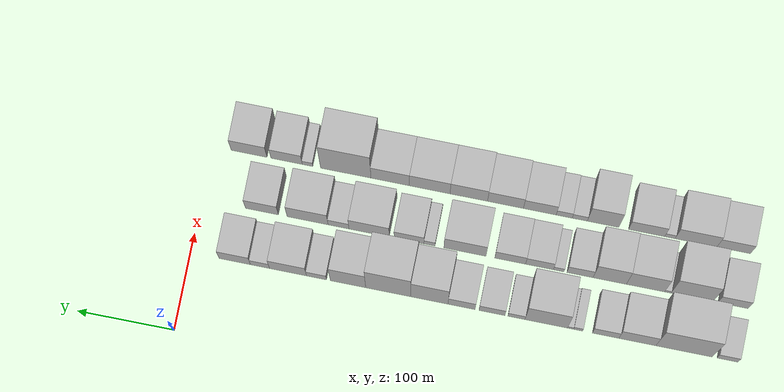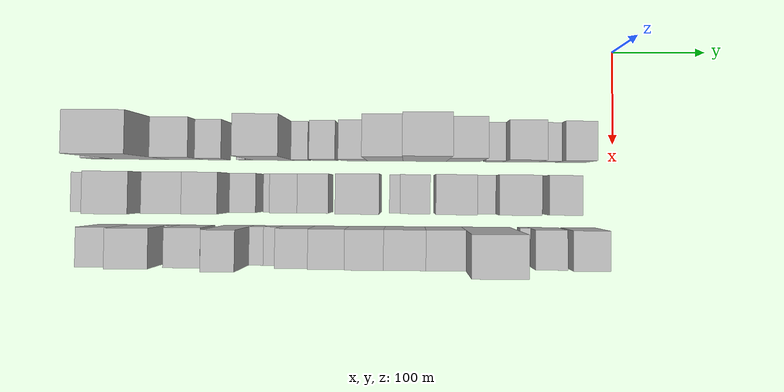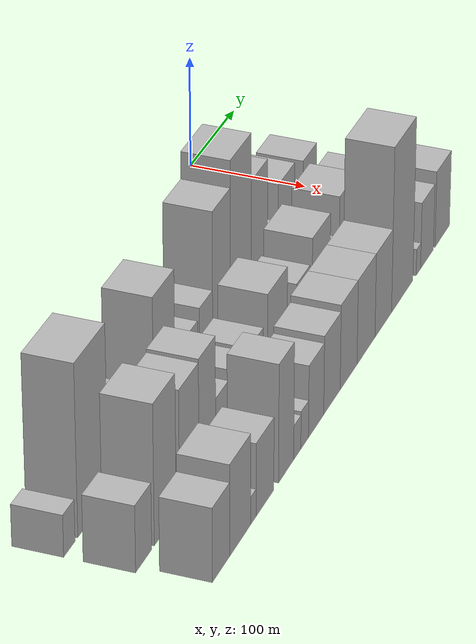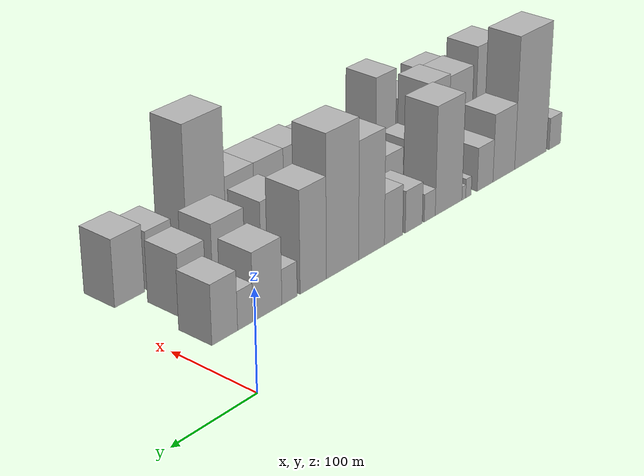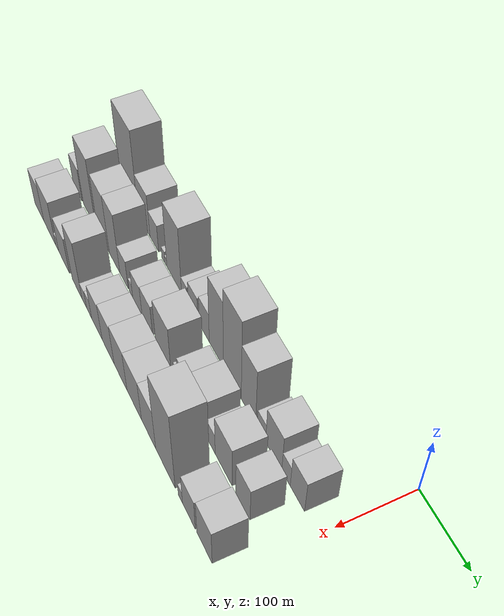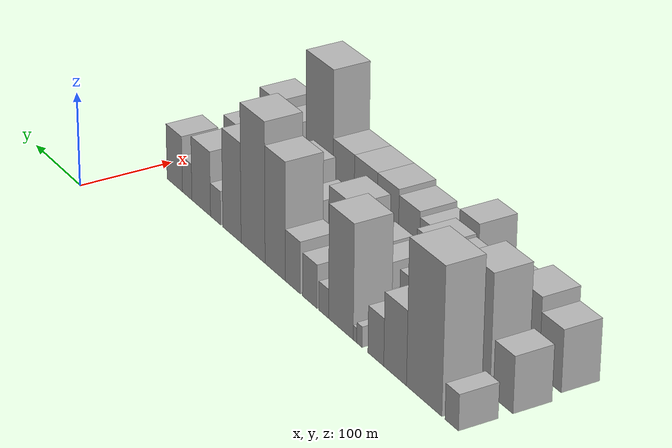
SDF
<sdf version="1.6">
 <world name="default">
  <model name="building_1">
   <static>1</static>
   <pose>100.0000 -549.3351 0 0.000000 0.000000 0.000000</pose>
   <link name="link">
    <pose>0 0 18.00 0 0 0</pose>
    <collision name="collision"><geometry><box><size>40.0000 21.3298 36.0000</size></box></geometry></collision>
    <visual name="visual">
     <cast_shadows>0</cast_shadows>
     <geometry><box><size>40.0000 21.3298 36.0000</size></box></geometry>
     <material>
      <script>
       <uri>model://HANNAS_wall/materials/scripts</uri>
       <uri>model://HANNAS_wall/materials/textures</uri>
       <name>vrc/HANNAS_wall</name>
      </script>
     </material>
    </visual>
   </link>
  </model>
  <model name="building_2">
   <static>1</static>
   <pose>100.0000 -504.9209 0 0.000000 0.000000 0.000000</pose>
   <link name="link">
    <pose>0 0 73.50 0 0 0</pose>
    <collision name="collision"><geometry><box><size>40.0000 57.4987 147.0000</size></box></geometry></collision>
    <visual name="visual">
     <cast_shadows>0</cast_shadows>
     <geometry><box><size>40.0000 57.4987 147.0000</size></box></geometry>
     <material>
      <script>
       <uri>model://HANNAS_wall/materials/scripts</uri>
       <uri>model://HANNAS_wall/materials/textures</uri>
       <name>vrc/HANNAS_wall</name>
      </script>
     </material>
    </visual>
   </link>
  </model>
  <model name="building_3">
   <static>1</static>
   <pose>100.0000 -457.2303 0 0.000000 0.000000 0.000000</pose>
   <link name="link">
    <pose>0 0 37.50 0 0 0</pose>
    <collision name="collision"><geometry><box><size>40.0000 37.8825 75.0000</size></box></geometry></collision>
    <visual name="visual">
     <cast_shadows>0</cast_shadows>
     <geometry><box><size>40.0000 37.8825 75.0000</size></box></geometry>
     <material>
      <script>
       <uri>model://HANNAS_wall/materials/scripts</uri>
       <uri>model://HANNAS_wall/materials/textures</uri>
       <name>vrc/HANNAS_wall</name>
      </script>
     </material>
    </visual>
   </link>
  </model>
  <model name="building_4">
   <static>1</static>
   <pose>100.0000 -424.8399 0 0.000000 0.000000 0.000000</pose>
   <link name="link">
    <pose>0 0 24.00 0 0 0</pose>
    <collision name="collision"><geometry><box><size>40.0000 26.8981 48.0000</size></box></geometry></collision>
    <visual name="visual">
     <cast_shadows>0</cast_shadows>
     <geometry><box><size>40.0000 26.8981 48.0000</size></box></geometry>
     <material>
      <script>
       <uri>model://HANNAS_wall/materials/scripts</uri>
       <uri>model://HANNAS_wall/materials/textures</uri>
       <name>vrc/HANNAS_wall</name>
      </script>
     </material>
    </visual>
   </link>
  </model>
  <model name="building_5">
   <static>1</static>
   <pose>100.0000 -396.7720 0 0.000000 0.000000 0.000000</pose>
   <link name="link">
    <pose>0 0 10.50 0 0 0</pose>
    <collision name="collision"><geometry><box><size>40.0000 9.2377 21.0000</size></box></geometry></collision>
    <visual name="visual">
     <cast_shadows>0</cast_shadows>
     <geometry><box><size>40.0000 9.2377 21.0000</size></box></geometry>
     <material>
      <script>
       <uri>model://HANNAS_wall/materials/scripts</uri>
       <uri>model://HANNAS_wall/materials/textures</uri>
       <name>vrc/HANNAS_wall</name>
      </script>
     </material>
    </visual>
   </link>
  </model>
  <model name="building_6">
   <static>1</static>
   <pose>100.0000 -389.0437 0 0.000000 0.000000 0.000000</pose>
   <link name="link">
    <pose>0 0 7.50 0 0 0</pose>
    <collision name="collision"><geometry><box><size>40.0000 6.2190 15.0000</size></box></geometry></collision>
    <visual name="visual">
     <cast_shadows>0</cast_shadows>
     <geometry><box><size>40.0000 6.2190 15.0000</size></box></geometry>
     <material>
      <script>
       <uri>model://HANNAS_wall/materials/scripts</uri>
       <uri>model://HANNAS_wall/materials/textures</uri>
       <name>vrc/HANNAS_wall</name>
      </script>
     </material>
    </visual>
   </link>
  </model>
  <model name="building_7">
   <static>1</static>
   <pose>100.0000 -364.2086 0 0.000000 0.000000 0.000000</pose>
   <link name="link">
    <pose>0 0 58.50 0 0 0</pose>
    <collision name="collision"><geometry><box><size>40.0000 43.4513 117.0000</size></box></geometry></collision>
    <visual name="visual">
     <cast_shadows>0</cast_shadows>
     <geometry><box><size>40.0000 43.4513 117.0000</size></box></geometry>
     <material>
      <script>
       <uri>model://HANNAS_wall/materials/scripts</uri>
       <uri>model://HANNAS_wall/materials/textures</uri>
       <name>vrc/HANNAS_wall</name>
      </script>
     </material>
    </visual>
   </link>
  </model>
  <model name="building_8">
   <static>1</static>
   <pose>100.0000 -333.7156 0 0.000000 0.000000 0.000000</pose>
   <link name="link">
    <pose>0 0 15.00 0 0 0</pose>
    <collision name="collision"><geometry><box><size>40.0000 17.5347 30.0000</size></box></geometry></collision>
    <visual name="visual">
     <cast_shadows>0</cast_shadows>
     <geometry><box><size>40.0000 17.5347 30.0000</size></box></geometry>
     <material>
      <script>
       <uri>model://HANNAS_wall/materials/scripts</uri>
       <uri>model://HANNAS_wall/materials/textures</uri>
       <name>vrc/HANNAS_wall</name>
      </script>
     </material>
    </visual>
   </link>
  </model>
  <model name="building_9">
   <static>1</static>
   <pose>100.0000 -308.6687 0 0.000000 0.000000 0.000000</pose>
   <link name="link">
    <pose>0 0 22.50 0 0 0</pose>
    <collision name="collision"><geometry><box><size>40.0000 26.5590 45.0000</size></box></geometry></collision>
    <visual name="visual">
     <cast_shadows>0</cast_shadows>
     <geometry><box><size>40.0000 26.5590 45.0000</size></box></geometry>
     <material>
      <script>
       <uri>model://HANNAS_wall/materials/scripts</uri>
       <uri>model://HANNAS_wall/materials/textures</uri>
       <name>vrc/HANNAS_wall</name>
      </script>
     </material>
    </visual>
   </link>
  </model>
  <model name="building_10">
   <static>1</static>
   <pose>100.0000 -277.5191 0 0.000000 0.000000 0.000000</pose>
   <link name="link">
    <pose>0 0 27.00 0 0 0</pose>
    <collision name="collision"><geometry><box><size>40.0000 27.7403 54.0000</size></box></geometry></collision>
    <visual name="visual">
     <cast_shadows>0</cast_shadows>
     <geometry><box><size>40.0000 27.7403 54.0000</size></box></geometry>
     <material>
      <script>
       <uri>model://HANNAS_wall/materials/scripts</uri>
       <uri>model://HANNAS_wall/materials/textures</uri>
       <name>vrc/HANNAS_wall</name>
      </script>
     </material>
    </visual>
   </link>
  </model>
  <model name="building_11">
   <static>1</static>
   <pose>100.0000 -244.6015 0 0.000000 0.000000 0.000000</pose>
   <link name="link">
    <pose>0 0 61.50 0 0 0</pose>
    <collision name="collision"><geometry><box><size>40.0000 38.0948 123.0000</size></box></geometry></collision>
    <visual name="visual">
     <cast_shadows>0</cast_shadows>
     <geometry><box><size>40.0000 38.0948 123.0000</size></box></geometry>
     <material>
      <script>
       <uri>model://HANNAS_wall/materials/scripts</uri>
       <uri>model://HANNAS_wall/materials/textures</uri>
       <name>vrc/HANNAS_wall</name>
      </script>
     </material>
    </visual>
   </link>
  </model>
  <model name="building_12">
   <static>1</static>
   <pose>100.0000 -202.4772 0 0.000000 0.000000 0.000000</pose>
   <link name="link">
    <pose>0 0 73.50 0 0 0</pose>
    <collision name="collision"><geometry><box><size>40.0000 46.1538 147.0000</size></box></geometry></collision>
    <visual name="visual">
     <cast_shadows>0</cast_shadows>
     <geometry><box><size>40.0000 46.1538 147.0000</size></box></geometry>
     <material>
      <script>
       <uri>model://HANNAS_wall/materials/scripts</uri>
       <uri>model://HANNAS_wall/materials/textures</uri>
       <name>vrc/HANNAS_wall</name>
      </script>
     </material>
    </visual>
   </link>
  </model>
  <model name="building_13">
   <static>1</static>
   <pose>100.0000 -161.3145 0 0.000000 0.000000 0.000000</pose>
   <link name="link">
    <pose>0 0 52.50 0 0 0</pose>
    <collision name="collision"><geometry><box><size>40.0000 36.1715 105.0000</size></box></geometry></collision>
    <visual name="visual">
     <cast_shadows>0</cast_shadows>
     <geometry><box><size>40.0000 36.1715 105.0000</size></box></geometry>
     <material>
      <script>
       <uri>model://HANNAS_wall/materials/scripts</uri>
       <uri>model://HANNAS_wall/materials/textures</uri>
       <name>vrc/HANNAS_wall</name>
      </script>
     </material>
    </visual>
   </link>
  </model>
  <model name="building_14">
   <static>1</static>
   <pose>100.0000 -128.9654 0 0.000000 0.000000 0.000000</pose>
   <link name="link">
    <pose>0 0 18.00 0 0 0</pose>
    <collision name="collision"><geometry><box><size>40.0000 20.5266 36.0000</size></box></geometry></collision>
    <visual name="visual">
     <cast_shadows>0</cast_shadows>
     <geometry><box><size>40.0000 20.5266 36.0000</size></box></geometry>
     <material>
      <script>
       <uri>model://HANNAS_wall/materials/scripts</uri>
       <uri>model://HANNAS_wall/materials/textures</uri>
       <name>vrc/HANNAS_wall</name>
      </script>
     </material>
    </visual>
   </link>
  </model>
  <model name="building_15">
   <static>1</static>
   <pose>100.0000 -99.7631 0 0.000000 0.000000 0.000000</pose>
   <link name="link">
    <pose>0 0 34.50 0 0 0</pose>
    <collision name="collision"><geometry><box><size>40.0000 37.8780 69.0000</size></box></geometry></collision>
    <visual name="visual">
     <cast_shadows>0</cast_shadows>
     <geometry><box><size>40.0000 37.8780 69.0000</size></box></geometry>
     <material>
      <script>
       <uri>model://HANNAS_wall/materials/scripts</uri>
       <uri>model://HANNAS_wall/materials/textures</uri>
       <name>vrc/HANNAS_wall</name>
      </script>
     </material>
    </visual>
   </link>
  </model>
  <model name="building_16">
   <static>1</static>
   <pose>100.0000 -71.0460 0 0.000000 0.000000 0.000000</pose>
   <link name="link">
    <pose>0 0 19.50 0 0 0</pose>
    <collision name="collision"><geometry><box><size>40.0000 19.5564 39.0000</size></box></geometry></collision>
    <visual name="visual">
     <cast_shadows>0</cast_shadows>
     <geometry><box><size>40.0000 19.5564 39.0000</size></box></geometry>
     <material>
      <script>
       <uri>model://HANNAS_wall/materials/scripts</uri>
       <uri>model://HANNAS_wall/materials/textures</uri>
       <name>vrc/HANNAS_wall</name>
      </script>
     </material>
    </visual>
   </link>
  </model>
  <model name="building_17">
   <static>1</static>
   <pose>100.0000 -45.1761 0 0.000000 0.000000 0.000000</pose>
   <link name="link">
    <pose>0 0 30.00 0 0 0</pose>
    <collision name="collision"><geometry><box><size>40.0000 32.1834 60.0000</size></box></geometry></collision>
    <visual name="visual">
     <cast_shadows>0</cast_shadows>
     <geometry><box><size>40.0000 32.1834 60.0000</size></box></geometry>
     <material>
      <script>
       <uri>model://HANNAS_wall/materials/scripts</uri>
       <uri>model://HANNAS_wall/materials/textures</uri>
       <name>vrc/HANNAS_wall</name>
      </script>
     </material>
    </visual>
   </link>
  </model>
  <model name="building_36">
   <static>1</static>
   <pose>155.0000 -544.5624 0 0.000000 0.000000 0.000000</pose>
   <link name="link">
    <pose>0 0 28.50 0 0 0</pose>
    <collision name="collision"><geometry><box><size>40.0000 30.8753 57.0000</size></box></geometry></collision>
    <visual name="visual">
     <cast_shadows>0</cast_shadows>
     <geometry><box><size>40.0000 30.8753 57.0000</size></box></geometry>
     <material>
      <script>
       <uri>model://HANNAS_wall/materials/scripts</uri>
       <uri>model://HANNAS_wall/materials/textures</uri>
       <name>vrc/HANNAS_wall</name>
      </script>
     </material>
    </visual>
   </link>
  </model>
  <model name="building_37">
   <static>1</static>
   <pose>155.0000 -502.6517 0 0.000000 0.000000 0.000000</pose>
   <link name="link">
    <pose>0 0 60.00 0 0 0</pose>
    <collision name="collision"><geometry><box><size>40.0000 42.9461 120.0000</size></box></geometry></collision>
    <visual name="visual">
     <cast_shadows>0</cast_shadows>
     <geometry><box><size>40.0000 42.9461 120.0000</size></box></geometry>
     <material>
      <script>
       <uri>model://HANNAS_wall/materials/scripts</uri>
       <uri>model://HANNAS_wall/materials/textures</uri>
       <name>vrc/HANNAS_wall</name>
      </script>
     </material>
    </visual>
   </link>
  </model>
  <model name="building_38">
   <static>1</static>
   <pose>155.0000 -477.8783 0 0.000000 0.000000 0.000000</pose>
   <link name="link">
    <pose>0 0 7.50 0 0 0</pose>
    <collision name="collision"><geometry><box><size>40.0000 6.6005 15.0000</size></box></geometry></collision>
    <visual name="visual">
     <cast_shadows>0</cast_shadows>
     <geometry><box><size>40.0000 6.6005 15.0000</size></box></geometry>
     <material>
      <script>
       <uri>model://HANNAS_wall/materials/scripts</uri>
       <uri>model://HANNAS_wall/materials/textures</uri>
       <name>vrc/HANNAS_wall</name>
      </script>
     </material>
    </visual>
   </link>
  </model>
  <model name="building_39">
   <static>1</static>
   <pose>155.0000 -454.9827 0 0.000000 0.000000 0.000000</pose>
   <link name="link">
    <pose>0 0 51.00 0 0 0</pose>
    <collision name="collision"><geometry><box><size>40.0000 39.1908 102.0000</size></box></geometry></collision>
    <visual name="visual">
     <cast_shadows>0</cast_shadows>
     <geometry><box><size>40.0000 39.1908 102.0000</size></box></geometry>
     <material>
      <script>
       <uri>model://HANNAS_wall/materials/scripts</uri>
       <uri>model://HANNAS_wall/materials/textures</uri>
       <name>vrc/HANNAS_wall</name>
      </script>
     </material>
    </visual>
   </link>
  </model>
  <model name="building_40">
   <static>1</static>
   <pose>155.0000 -418.3287 0 0.000000 0.000000 0.000000</pose>
   <link name="link">
    <pose>0 0 52.50 0 0 0</pose>
    <collision name="collision"><geometry><box><size>40.0000 34.1171 105.0000</size></box></geometry></collision>
    <visual name="visual">
     <cast_shadows>0</cast_shadows>
     <geometry><box><size>40.0000 34.1171 105.0000</size></box></geometry>
     <material>
      <script>
       <uri>model://HANNAS_wall/materials/scripts</uri>
       <uri>model://HANNAS_wall/materials/textures</uri>
       <name>vrc/HANNAS_wall</name>
      </script>
     </material>
    </visual>
   </link>
  </model>
  <model name="building_41">
   <static>1</static>
   <pose>155.0000 -387.9617 0 0.000000 0.000000 0.000000</pose>
   <link name="link">
    <pose>0 0 25.50 0 0 0</pose>
    <collision name="collision"><geometry><box><size>40.0000 26.6170 51.0000</size></box></geometry></collision>
    <visual name="visual">
     <cast_shadows>0</cast_shadows>
     <geometry><box><size>40.0000 26.6170 51.0000</size></box></geometry>
     <material>
      <script>
       <uri>model://HANNAS_wall/materials/scripts</uri>
       <uri>model://HANNAS_wall/materials/textures</uri>
       <name>vrc/HANNAS_wall</name>
      </script>
     </material>
    </visual>
   </link>
  </model>
  <model name="building_42">
   <static>1</static>
   <pose>155.0000 -366.2097 0 0.000000 0.000000 0.000000</pose>
   <link name="link">
    <pose>0 0 12.00 0 0 0</pose>
    <collision name="collision"><geometry><box><size>40.0000 10.8868 24.0000</size></box></geometry></collision>
    <visual name="visual">
     <cast_shadows>0</cast_shadows>
     <geometry><box><size>40.0000 10.8868 24.0000</size></box></geometry>
     <material>
      <script>
       <uri>model://HANNAS_wall/materials/scripts</uri>
       <uri>model://HANNAS_wall/materials/textures</uri>
       <name>vrc/HANNAS_wall</name>
      </script>
     </material>
    </visual>
   </link>
  </model>
  <model name="building_43">
   <static>1</static>
   <pose>155.0000 -346.4759 0 0.000000 0.000000 0.000000</pose>
   <link name="link">
    <pose>0 0 25.50 0 0 0</pose>
    <collision name="collision"><geometry><box><size>40.0000 28.5809 51.0000</size></box></geometry></collision>
    <visual name="visual">
     <cast_shadows>0</cast_shadows>
     <geometry><box><size>40.0000 28.5809 51.0000</size></box></geometry>
     <material>
      <script>
       <uri>model://HANNAS_wall/materials/scripts</uri>
       <uri>model://HANNAS_wall/materials/textures</uri>
       <name>vrc/HANNAS_wall</name>
      </script>
     </material>
    </visual>
   </link>
  </model>
  <model name="building_44">
   <static>1</static>
   <pose>155.0000 -316.4502 0 0.000000 0.000000 0.000000</pose>
   <link name="link">
    <pose>0 0 27.00 0 0 0</pose>
    <collision name="collision"><geometry><box><size>40.0000 31.4704 54.0000</size></box></geometry></collision>
    <visual name="visual">
     <cast_shadows>0</cast_shadows>
     <geometry><box><size>40.0000 31.4704 54.0000</size></box></geometry>
     <material>
      <script>
       <uri>model://HANNAS_wall/materials/scripts</uri>
       <uri>model://HANNAS_wall/materials/textures</uri>
       <name>vrc/HANNAS_wall</name>
      </script>
     </material>
    </visual>
   </link>
  </model>
  <model name="building_45">
   <static>1</static>
   <pose>155.0000 -270.0742 0 0.000000 0.000000 0.000000</pose>
   <link name="link">
    <pose>0 0 39.00 0 0 0</pose>
    <collision name="collision"><geometry><box><size>40.0000 43.2818 78.0000</size></box></geometry></collision>
    <visual name="visual">
     <cast_shadows>0</cast_shadows>
     <geometry><box><size>40.0000 43.2818 78.0000</size></box></geometry>
     <material>
      <script>
       <uri>model://HANNAS_wall/materials/scripts</uri>
       <uri>model://HANNAS_wall/materials/textures</uri>
       <name>vrc/HANNAS_wall</name>
      </script>
     </material>
    </visual>
   </link>
  </model>
  <model name="building_46">
   <static>1</static>
   <pose>155.0000 -233.7053 0 0.000000 0.000000 0.000000</pose>
   <link name="link">
    <pose>0 0 13.50 0 0 0</pose>
    <collision name="collision"><geometry><box><size>40.0000 11.4559 27.0000</size></box></geometry></collision>
    <visual name="visual">
     <cast_shadows>0</cast_shadows>
     <geometry><box><size>40.0000 11.4559 27.0000</size></box></geometry>
     <material>
      <script>
       <uri>model://HANNAS_wall/materials/scripts</uri>
       <uri>model://HANNAS_wall/materials/textures</uri>
       <name>vrc/HANNAS_wall</name>
      </script>
     </material>
    </visual>
   </link>
  </model>
  <model name="building_47">
   <static>1</static>
   <pose>155.0000 -212.6910 0 0.000000 0.000000 0.000000</pose>
   <link name="link">
    <pose>0 0 25.50 0 0 0</pose>
    <collision name="collision"><geometry><box><size>40.0000 30.5728 51.0000</size></box></geometry></collision>
    <visual name="visual">
     <cast_shadows>0</cast_shadows>
     <geometry><box><size>40.0000 30.5728 51.0000</size></box></geometry>
     <material>
      <script>
       <uri>model://HANNAS_wall/materials/scripts</uri>
       <uri>model://HANNAS_wall/materials/textures</uri>
       <name>vrc/HANNAS_wall</name>
      </script>
     </material>
    </visual>
   </link>
  </model>
  <model name="building_48">
   <static>1</static>
   <pose>155.0000 -171.7487 0 0.000000 0.000000 0.000000</pose>
   <link name="link">
    <pose>0 0 36.00 0 0 0</pose>
    <collision name="collision"><geometry><box><size>40.0000 41.3119 72.0000</size></box></geometry></collision>
    <visual name="visual">
     <cast_shadows>0</cast_shadows>
     <geometry><box><size>40.0000 41.3119 72.0000</size></box></geometry>
     <material>
      <script>
       <uri>model://HANNAS_wall/materials/scripts</uri>
       <uri>model://HANNAS_wall/materials/textures</uri>
       <name>vrc/HANNAS_wall</name>
      </script>
     </material>
    </visual>
   </link>
  </model>
  <model name="building_49">
   <static>1</static>
   <pose>155.0000 -140.3608 0 0.000000 0.000000 0.000000</pose>
   <link name="link">
    <pose>0 0 19.50 0 0 0</pose>
    <collision name="collision"><geometry><box><size>40.0000 21.4638 39.0000</size></box></geometry></collision>
    <visual name="visual">
     <cast_shadows>0</cast_shadows>
     <geometry><box><size>40.0000 21.4638 39.0000</size></box></geometry>
     <material>
      <script>
       <uri>model://HANNAS_wall/materials/scripts</uri>
       <uri>model://HANNAS_wall/materials/textures</uri>
       <name>vrc/HANNAS_wall</name>
      </script>
     </material>
    </visual>
   </link>
  </model>
  <model name="building_50">
   <static>1</static>
   <pose>155.0000 -108.6381 0 0.000000 0.000000 0.000000</pose>
   <link name="link">
    <pose>0 0 37.50 0 0 0</pose>
    <collision name="collision"><geometry><box><size>40.0000 41.9817 75.0000</size></box></geometry></collision>
    <visual name="visual">
     <cast_shadows>0</cast_shadows>
     <geometry><box><size>40.0000 41.9817 75.0000</size></box></geometry>
     <material>
      <script>
       <uri>model://HANNAS_wall/materials/scripts</uri>
       <uri>model://HANNAS_wall/materials/textures</uri>
       <name>vrc/HANNAS_wall</name>
      </script>
     </material>
    </visual>
   </link>
  </model>
  <model name="building_51">
   <static>1</static>
   <pose>155.0000 -61.7702 0 0.000000 0.000000 0.000000</pose>
   <link name="link">
    <pose>0 0 31.50 0 0 0</pose>
    <collision name="collision"><geometry><box><size>40.0000 33.7540 63.0000</size></box></geometry></collision>
    <visual name="visual">
     <cast_shadows>0</cast_shadows>
     <geometry><box><size>40.0000 33.7540 63.0000</size></box></geometry>
     <material>
      <script>
       <uri>model://HANNAS_wall/materials/scripts</uri>
       <uri>model://HANNAS_wall/materials/textures</uri>
       <name>vrc/HANNAS_wall</name>
      </script>
     </material>
    </visual>
   </link>
  </model>
  <model name="building_66">
   <static>1</static>
   <pose>210.0000 -534.8575 0 0.000000 0.000000 0.000000</pose>
   <link name="link">
    <pose>0 0 31.50 0 0 0</pose>
    <collision name="collision"><geometry><box><size>40.0000 34.2849 63.0000</size></box></geometry></collision>
    <visual name="visual">
     <cast_shadows>0</cast_shadows>
     <geometry><box><size>40.0000 34.2849 63.0000</size></box></geometry>
     <material>
      <script>
       <uri>model://HANNAS_wall/materials/scripts</uri>
       <uri>model://HANNAS_wall/materials/textures</uri>
       <name>vrc/HANNAS_wall</name>
      </script>
     </material>
    </visual>
   </link>
  </model>
  <model name="building_67">
   <static>1</static>
   <pose>210.0000 -496.2436 0 0.000000 0.000000 0.000000</pose>
   <link name="link">
    <pose>0 0 39.00 0 0 0</pose>
    <collision name="collision"><geometry><box><size>40.0000 42.9430 78.0000</size></box></geometry></collision>
    <visual name="visual">
     <cast_shadows>0</cast_shadows>
     <geometry><box><size>40.0000 42.9430 78.0000</size></box></geometry>
     <material>
      <script>
       <uri>model://HANNAS_wall/materials/scripts</uri>
       <uri>model://HANNAS_wall/materials/textures</uri>
       <name>vrc/HANNAS_wall</name>
      </script>
     </material>
    </visual>
   </link>
  </model>
  <model name="building_68">
   <static>1</static>
   <pose>210.0000 -469.4652 0 0.000000 0.000000 0.000000</pose>
   <link name="link">
    <pose>0 0 12.00 0 0 0</pose>
    <collision name="collision"><geometry><box><size>40.0000 10.6136 24.0000</size></box></geometry></collision>
    <visual name="visual">
     <cast_shadows>0</cast_shadows>
     <geometry><box><size>40.0000 10.6136 24.0000</size></box></geometry>
     <material>
      <script>
       <uri>model://HANNAS_wall/materials/scripts</uri>
       <uri>model://HANNAS_wall/materials/textures</uri>
       <name>vrc/HANNAS_wall</name>
      </script>
     </material>
    </visual>
   </link>
  </model>
  <model name="building_69">
   <static>1</static>
   <pose>210.0000 -445.6352 0 0.000000 0.000000 0.000000</pose>
   <link name="link">
    <pose>0 0 31.50 0 0 0</pose>
    <collision name="collision"><geometry><box><size>40.0000 37.0464 63.0000</size></box></geometry></collision>
    <visual name="visual">
     <cast_shadows>0</cast_shadows>
     <geometry><box><size>40.0000 37.0464 63.0000</size></box></geometry>
     <material>
      <script>
       <uri>model://HANNAS_wall/materials/scripts</uri>
       <uri>model://HANNAS_wall/materials/textures</uri>
       <name>vrc/HANNAS_wall</name>
      </script>
     </material>
    </visual>
   </link>
  </model>
  <model name="building_70">
   <static>1</static>
   <pose>210.0000 -400.9203 0 0.000000 0.000000 0.000000</pose>
   <link name="link">
    <pose>0 0 51.00 0 0 0</pose>
    <collision name="collision"><geometry><box><size>40.0000 32.3834 102.0000</size></box></geometry></collision>
    <visual name="visual">
     <cast_shadows>0</cast_shadows>
     <geometry><box><size>40.0000 32.3834 102.0000</size></box></geometry>
     <material>
      <script>
       <uri>model://HANNAS_wall/materials/scripts</uri>
       <uri>model://HANNAS_wall/materials/textures</uri>
       <name>vrc/HANNAS_wall</name>
      </script>
     </material>
    </visual>
   </link>
  </model>
  <model name="building_71">
   <static>1</static>
   <pose>210.0000 -377.0530 0 0.000000 0.000000 0.000000</pose>
   <link name="link">
    <pose>0 0 15.00 0 0 0</pose>
    <collision name="collision"><geometry><box><size>40.0000 15.3512 30.0000</size></box></geometry></collision>
    <visual name="visual">
     <cast_shadows>0</cast_shadows>
     <geometry><box><size>40.0000 15.3512 30.0000</size></box></geometry>
     <material>
      <script>
       <uri>model://HANNAS_wall/materials/scripts</uri>
       <uri>model://HANNAS_wall/materials/textures</uri>
       <name>vrc/HANNAS_wall</name>
      </script>
     </material>
    </visual>
   </link>
  </model>
  <model name="building_72">
   <static>1</static>
   <pose>210.0000 -361.1188 0 0.000000 0.000000 0.000000</pose>
   <link name="link">
    <pose>0 0 16.50 0 0 0</pose>
    <collision name="collision"><geometry><box><size>40.0000 16.5173 33.0000</size></box></geometry></collision>
    <visual name="visual">
     <cast_shadows>0</cast_shadows>
     <geometry><box><size>40.0000 16.5173 33.0000</size></box></geometry>
     <material>
      <script>
       <uri>model://HANNAS_wall/materials/scripts</uri>
       <uri>model://HANNAS_wall/materials/textures</uri>
       <name>vrc/HANNAS_wall</name>
      </script>
     </material>
    </visual>
   </link>
  </model>
  <model name="building_73">
   <static>1</static>
   <pose>210.0000 -336.0107 0 0.000000 0.000000 0.000000</pose>
   <link name="link">
    <pose>0 0 31.50 0 0 0</pose>
    <collision name="collision"><geometry><box><size>40.0000 33.6989 63.0000</size></box></geometry></collision>
    <visual name="visual">
     <cast_shadows>0</cast_shadows>
     <geometry><box><size>40.0000 33.6989 63.0000</size></box></geometry>
     <material>
      <script>
       <uri>model://HANNAS_wall/materials/scripts</uri>
       <uri>model://HANNAS_wall/materials/textures</uri>
       <name>vrc/HANNAS_wall</name>
      </script>
     </material>
    </visual>
   </link>
  </model>
  <model name="building_74">
   <static>1</static>
   <pose>210.0000 -300.7501 0 0.000000 0.000000 0.000000</pose>
   <link name="link">
    <pose>0 0 34.50 0 0 0</pose>
    <collision name="collision"><geometry><box><size>40.0000 36.8223 69.0000</size></box></geometry></collision>
    <visual name="visual">
     <cast_shadows>0</cast_shadows>
     <geometry><box><size>40.0000 36.8223 69.0000</size></box></geometry>
     <material>
      <script>
       <uri>model://HANNAS_wall/materials/scripts</uri>
       <uri>model://HANNAS_wall/materials/textures</uri>
       <name>vrc/HANNAS_wall</name>
      </script>
     </material>
    </visual>
   </link>
  </model>
  <model name="building_75">
   <static>1</static>
   <pose>210.0000 -263.0900 0 0.000000 0.000000 0.000000</pose>
   <link name="link">
    <pose>0 0 37.50 0 0 0</pose>
    <collision name="collision"><geometry><box><size>40.0000 38.4978 75.0000</size></box></geometry></collision>
    <visual name="visual">
     <cast_shadows>0</cast_shadows>
     <geometry><box><size>40.0000 38.4978 75.0000</size></box></geometry>
     <material>
      <script>
       <uri>model://HANNAS_wall/materials/scripts</uri>
       <uri>model://HANNAS_wall/materials/textures</uri>
       <name>vrc/HANNAS_wall</name>
      </script>
     </material>
    </visual>
   </link>
  </model>
  <model name="building_76">
   <static>1</static>
   <pose>210.0000 -222.9254 0 0.000000 0.000000 0.000000</pose>
   <link name="link">
    <pose>0 0 37.50 0 0 0</pose>
    <collision name="collision"><geometry><box><size>40.0000 41.8314 75.0000</size></box></geometry></collision>
    <visual name="visual">
     <cast_shadows>0</cast_shadows>
     <geometry><box><size>40.0000 41.8314 75.0000</size></box></geometry>
     <material>
      <script>
       <uri>model://HANNAS_wall/materials/scripts</uri>
       <uri>model://HANNAS_wall/materials/textures</uri>
       <name>vrc/HANNAS_wall</name>
      </script>
     </material>
    </visual>
   </link>
  </model>
  <model name="building_77">
   <static>1</static>
   <pose>210.0000 -182.2820 0 0.000000 0.000000 0.000000</pose>
   <link name="link">
    <pose>0 0 37.50 0 0 0</pose>
    <collision name="collision"><geometry><box><size>40.0000 39.4555 75.0000</size></box></geometry></collision>
    <visual name="visual">
     <cast_shadows>0</cast_shadows>
     <geometry><box><size>40.0000 39.4555 75.0000</size></box></geometry>
     <material>
      <script>
       <uri>model://HANNAS_wall/materials/scripts</uri>
       <uri>model://HANNAS_wall/materials/textures</uri>
       <name>vrc/HANNAS_wall</name>
      </script>
     </material>
    </visual>
   </link>
  </model>
  <model name="building_78">
   <static>1</static>
   <pose>210.0000 -136.6528 0 0.000000 0.000000 0.000000</pose>
   <link name="link">
    <pose>0 0 73.50 0 0 0</pose>
    <collision name="collision"><geometry><box><size>40.0000 51.8028 147.0000</size></box></geometry></collision>
    <visual name="visual">
     <cast_shadows>0</cast_shadows>
     <geometry><box><size>40.0000 51.8028 147.0000</size></box></geometry>
     <material>
      <script>
       <uri>model://HANNAS_wall/materials/scripts</uri>
       <uri>model://HANNAS_wall/materials/textures</uri>
       <name>vrc/HANNAS_wall</name>
      </script>
     </material>
    </visual>
   </link>
  </model>
  <model name="building_79">
   <static>1</static>
   <pose>210.0000 -97.2921 0 0.000000 0.000000 0.000000</pose>
   <link name="link">
    <pose>0 0 12.00 0 0 0</pose>
    <collision name="collision"><geometry><box><size>40.0000 10.9186 24.0000</size></box></geometry></collision>
    <visual name="visual">
     <cast_shadows>0</cast_shadows>
     <geometry><box><size>40.0000 10.9186 24.0000</size></box></geometry>
     <material>
      <script>
       <uri>model://HANNAS_wall/materials/scripts</uri>
       <uri>model://HANNAS_wall/materials/textures</uri>
       <name>vrc/HANNAS_wall</name>
      </script>
     </material>
    </visual>
   </link>
  </model>
  <model name="building_80">
   <static>1</static>
   <pose>210.0000 -75.7413 0 0.000000 0.000000 0.000000</pose>
   <link name="link">
    <pose>0 0 30.00 0 0 0</pose>
    <collision name="collision"><geometry><box><size>40.0000 32.1830 60.0000</size></box></geometry></collision>
    <visual name="visual">
     <cast_shadows>0</cast_shadows>
     <geometry><box><size>40.0000 32.1830 60.0000</size></box></geometry>
     <material>
      <script>
       <uri>model://HANNAS_wall/materials/scripts</uri>
       <uri>model://HANNAS_wall/materials/textures</uri>
       <name>vrc/HANNAS_wall</name>
      </script>
     </material>
    </visual>
   </link>
  </model>
  <model name="building_81">
   <static>1</static>
   <pose>210.0000 -37.1989 0 0.000000 0.000000 0.000000</pose>
   <link name="link">
    <pose>0 0 34.50 0 0 0</pose>
    <collision name="collision"><geometry><box><size>40.0000 36.9018 69.0000</size></box></geometry></collision>
    <visual name="visual">
     <cast_shadows>0</cast_shadows>
     <geometry><box><size>40.0000 36.9018 69.0000</size></box></geometry>
     <material>
      <script>
       <uri>model://HANNAS_wall/materials/scripts</uri>
       <uri>model://HANNAS_wall/materials/textures</uri>
       <name>vrc/HANNAS_wall</name>
      </script>
     </material>
    </visual>
   </link>
  </model>
 </world>
</sdf>
